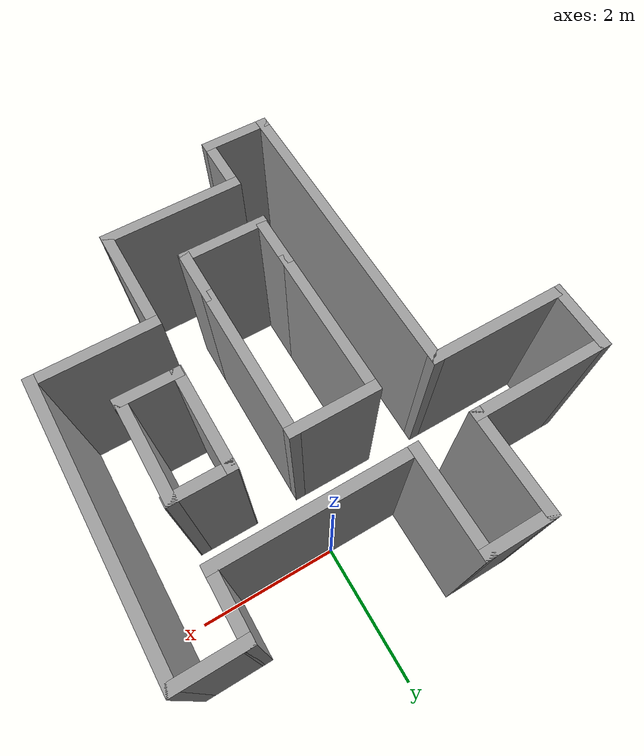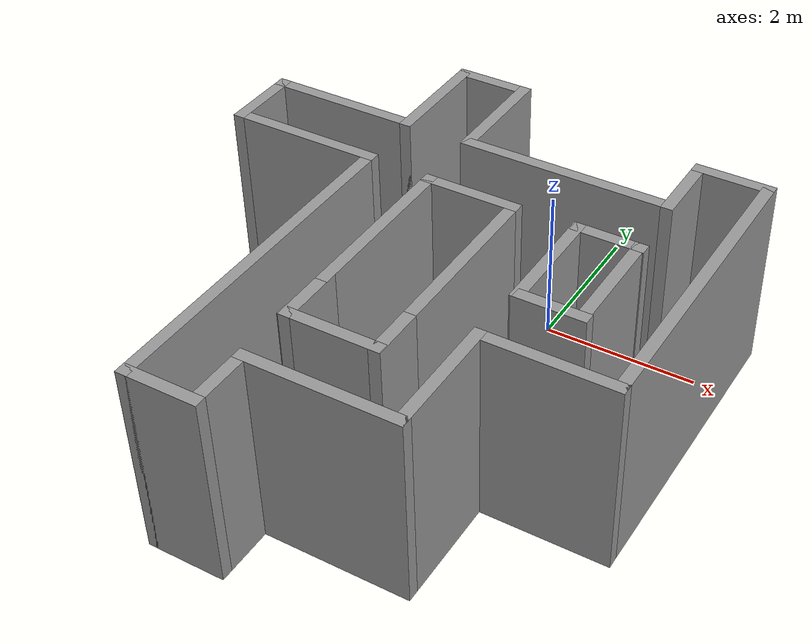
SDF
<?xml version='1.0'?>
<sdf version='1.7'>
  <model name='carehome02'>
    <pose>-0.744663 -1.99495 0 0 -0 0</pose>
    <link name='Wall_10'>
      <collision name='Wall_10_Collision'>
        <geometry>
          <box>
            <size>2 0.15 2.5</size>
          </box>
        </geometry>
        <pose>0 0 1.25 0 -0 0</pose>
      </collision>
      <visual name='Wall_10_Visual'>
        <pose>0 0 1.25 0 -0 0</pose>
        <geometry>
          <box>
            <size>2 0.15 2.5</size>
          </box>
        </geometry>
        <material>
          <script>
            <uri>file://media/materials/scripts/gazebo.material</uri>
            <name>Gazebo/Grey</name>
          </script>
          <ambient>1 1 1 1</ambient>
        </material>
        <meta>
          <layer>0</layer>
        </meta>
      </visual>
      <pose>-2.15 1.075 0 0 -0 3.14159</pose>
    </link>
    <link name='Wall_11'>
      <collision name='Wall_11_Collision'>
        <geometry>
          <box>
            <size>1 0.15 2.5</size>
          </box>
        </geometry>
        <pose>0 0 1.25 0 -0 0</pose>
      </collision>
      <visual name='Wall_11_Visual'>
        <pose>0 0 1.25 0 -0 0</pose>
        <geometry>
          <box>
            <size>1 0.15 2.5</size>
          </box>
        </geometry>
        <material>
          <script>
            <uri>file://media/materials/scripts/gazebo.material</uri>
            <name>Gazebo/Grey</name>
          </script>
          <ambient>1 1 1 1</ambient>
        </material>
        <meta>
          <layer>0</layer>
        </meta>
      </visual>
      <pose>-3.075 1.5 0 0 -0 1.5708</pose>
    </link>
    <link name='Wall_12'>
      <collision name='Wall_12_Collision'>
        <geometry>
          <box>
            <size>2 0.15 2.5</size>
          </box>
        </geometry>
        <pose>0 0 1.25 0 -0 0</pose>
      </collision>
      <visual name='Wall_12_Visual'>
        <pose>0 0 1.25 0 -0 0</pose>
        <geometry>
          <box>
            <size>2 0.15 2.5</size>
          </box>
        </geometry>
        <material>
          <script>
            <uri>file://media/materials/scripts/gazebo.material</uri>
            <name>Gazebo/Grey</name>
          </script>
          <ambient>1 1 1 1</ambient>
        </material>
        <meta>
          <layer>0</layer>
        </meta>
      </visual>
      <pose>-2.15 1.925 0 0 -0 0</pose>
    </link>
    <link name='Wall_15'>
      <collision name='Wall_15_Collision'>
        <geometry>
          <box>
            <size>1.5 0.15 2.5</size>
          </box>
        </geometry>
        <pose>0 0 1.25 0 -0 0</pose>
      </collision>
      <visual name='Wall_15_Visual'>
        <pose>0 0 1.25 0 -0 0</pose>
        <geometry>
          <box>
            <size>1.5 0.15 2.5</size>
          </box>
        </geometry>
        <material>
          <script>
            <uri>file://media/materials/scripts/gazebo.material</uri>
            <name>Gazebo/Grey</name>
          </script>
          <ambient>1 1 1 1</ambient>
        </material>
        <meta>
          <layer>0</layer>
        </meta>
      </visual>
      <pose>-1.225 2.6 0 0 -0 1.5708</pose>
    </link>
    <link name='Wall_16'>
      <collision name='Wall_16_Collision'>
        <geometry>
          <box>
            <size>1 0.15 2.5</size>
          </box>
        </geometry>
        <pose>0 0 1.25 0 -0 0</pose>
      </collision>
      <visual name='Wall_16_Visual'>
        <pose>0 0 1.25 0 -0 0</pose>
        <geometry>
          <box>
            <size>1 0.15 2.5</size>
          </box>
        </geometry>
        <material>
          <script>
            <uri>file://media/materials/scripts/gazebo.material</uri>
            <name>Gazebo/Grey</name>
          </script>
          <ambient>1 1 1 1</ambient>
        </material>
        <meta>
          <layer>0</layer>
        </meta>
      </visual>
      <pose>-0.8 3.275 0 0 -0 0</pose>
    </link>
    <link name='Wall_17'>
      <collision name='Wall_17_Collision'>
        <geometry>
          <box>
            <size>1.5 0.15 2.5</size>
          </box>
        </geometry>
        <pose>0 0 1.25 0 -0 0</pose>
      </collision>
      <visual name='Wall_17_Visual'>
        <pose>0 0 1.25 0 -0 0</pose>
        <geometry>
          <box>
            <size>1.5 0.15 2.5</size>
          </box>
        </geometry>
        <material>
          <script>
            <uri>file://media/materials/scripts/gazebo.material</uri>
            <name>Gazebo/Grey</name>
          </script>
          <ambient>1 1 1 1</ambient>
        </material>
        <meta>
          <layer>0</layer>
        </meta>
      </visual>
      <pose>-0.375 2.6 0 0 -0 -1.5708</pose>
    </link>
    <link name='Wall_18'>
      <collision name='Wall_18_Collision'>
        <geometry>
          <box>
            <size>2.75 0.15 2.5</size>
          </box>
        </geometry>
        <pose>0 0 1.25 0 -0 0</pose>
      </collision>
      <visual name='Wall_18_Visual'>
        <pose>0 0 1.25 0 -0 0</pose>
        <geometry>
          <box>
            <size>2.75 0.15 2.5</size>
          </box>
        </geometry>
        <material>
          <script>
            <uri>file://media/materials/scripts/gazebo.material</uri>
            <name>Gazebo/Grey</name>
          </script>
          <ambient>1 1 1 1</ambient>
        </material>
        <meta>
          <layer>0</layer>
        </meta>
      </visual>
      <pose>0.925 1.925 0 0 -0 0</pose>
    </link>
    <link name='Wall_19'>
      <collision name='Wall_19_Collision'>
        <geometry>
          <box>
            <size>1 0.15 2.5</size>
          </box>
        </geometry>
        <pose>0 0 1.25 0 -0 0</pose>
      </collision>
      <visual name='Wall_19_Visual'>
        <pose>0 0 1.25 0 -0 0</pose>
        <geometry>
          <box>
            <size>1 0.15 2.5</size>
          </box>
        </geometry>
        <material>
          <script>
            <uri>file://media/materials/scripts/gazebo.material</uri>
            <name>Gazebo/Grey</name>
          </script>
          <ambient>1 1 1 1</ambient>
        </material>
        <meta>
          <layer>0</layer>
        </meta>
      </visual>
      <pose>2.225 2.35 0 0 -0 1.5708</pose>
    </link>
    <link name='Wall_20'>
      <collision name='Wall_20_Collision'>
        <geometry>
          <box>
            <size>1 0.15 2.5</size>
          </box>
        </geometry>
        <pose>0 0 1.25 0 -0 0</pose>
      </collision>
      <visual name='Wall_20_Visual'>
        <pose>0 0 1.25 0 -0 0</pose>
        <geometry>
          <box>
            <size>1 0.15 2.5</size>
          </box>
        </geometry>
        <material>
          <script>
            <uri>file://media/materials/scripts/gazebo.material</uri>
            <name>Gazebo/Grey</name>
          </script>
          <ambient>1 1 1 1</ambient>
        </material>
        <meta>
          <layer>0</layer>
        </meta>
      </visual>
      <pose>2.65 2.775 0 0 -0 0</pose>
    </link>
    <link name='Wall_21'>
      <collision name='Wall_21_Collision'>
        <geometry>
          <box>
            <size>4 0.15 2.5</size>
          </box>
        </geometry>
        <pose>0 0 1.25 0 -0 0</pose>
      </collision>
      <visual name='Wall_21_Visual'>
        <pose>0 0 1.25 0 -0 0</pose>
        <geometry>
          <box>
            <size>4 0.15 2.5</size>
          </box>
        </geometry>
        <material>
          <script>
            <uri>file://media/materials/scripts/gazebo.material</uri>
            <name>Gazebo/Grey</name>
          </script>
          <ambient>1 1 1 1</ambient>
        </material>
        <meta>
          <layer>0</layer>
        </meta>
      </visual>
      <pose>3.075 0.85 0 0 -0 -1.5708</pose>
    </link>
    <link name='Wall_23'>
      <collision name='Wall_23_Collision'>
        <geometry>
          <box>
            <size>2.25 0.15 2.5</size>
          </box>
        </geometry>
        <pose>0 0 1.25 0 -0 0</pose>
      </collision>
      <visual name='Wall_23_Visual'>
        <pose>0 0 1.25 0 -0 0</pose>
        <geometry>
          <box>
            <size>2.25 0.15 2.5</size>
          </box>
        </geometry>
        <material>
          <script>
            <uri>file://media/materials/scripts/gazebo.material</uri>
            <name>Gazebo/Grey</name>
          </script>
          <ambient>1 1 1 1</ambient>
        </material>
        <meta>
          <layer>0</layer>
        </meta>
      </visual>
      <pose>0.725 -0.025 0 0 -0 1.5708</pose>
    </link>
    <link name='Wall_24'>
      <collision name='Wall_24_Collision'>
        <geometry>
          <box>
            <size>1.25 0.15 2.5</size>
          </box>
        </geometry>
        <pose>0 0 1.25 0 -0 0</pose>
      </collision>
      <visual name='Wall_24_Visual'>
        <pose>0 0 1.25 0 -0 0</pose>
        <geometry>
          <box>
            <size>1.25 0.15 2.5</size>
          </box>
        </geometry>
        <material>
          <script>
            <uri>file://media/materials/scripts/gazebo.material</uri>
            <name>Gazebo/Grey</name>
          </script>
          <ambient>1 1 1 1</ambient>
        </material>
        <meta>
          <layer>0</layer>
        </meta>
      </visual>
      <pose>0.175 1.025 0 0 -0 3.14159</pose>
    </link>
    <link name='Wall_25'>
      <collision name='Wall_25_Collision'>
        <geometry>
          <box>
            <size>2.25 0.15 2.5</size>
          </box>
        </geometry>
        <pose>0 0 1.25 0 -0 0</pose>
      </collision>
      <visual name='Wall_25_Visual'>
        <pose>0 0 1.25 0 -0 0</pose>
        <geometry>
          <box>
            <size>2.25 0.15 2.5</size>
          </box>
        </geometry>
        <material>
          <script>
            <uri>file://media/materials/scripts/gazebo.material</uri>
            <name>Gazebo/Grey</name>
          </script>
          <ambient>1 1 1 1</ambient>
        </material>
        <meta>
          <layer>0</layer>
        </meta>
      </visual>
      <pose>-0.375 -0.025 0 0 -0 -1.5708</pose>
    </link>
    <link name='Wall_36'>
      <collision name='Wall_36_Collision'>
        <geometry>
          <box>
            <size>1.5 0.15 2.5</size>
          </box>
        </geometry>
        <pose>0 0 1.25 0 -0 0</pose>
      </collision>
      <visual name='Wall_36_Visual'>
        <pose>0 0 1.25 0 -0 0</pose>
        <geometry>
          <box>
            <size>1.5 0.15 2.5</size>
          </box>
        </geometry>
        <material>
          <script>
            <uri>file://media/materials/scripts/gazebo.material</uri>
            <name>Gazebo/Grey</name>
          </script>
          <ambient>1 1 1 1</ambient>
        </material>
        <meta>
          <layer>0</layer>
        </meta>
      </visual>
      <pose>1.52194 0.37065 0 0 -0 -1.5708</pose>
    </link>
    <link name='Wall_37'>
      <collision name='Wall_37_Collision'>
        <geometry>
          <box>
            <size>0.8942 0.15 2.5</size>
          </box>
        </geometry>
        <pose>0 0 1.25 0 -0 0</pose>
      </collision>
      <visual name='Wall_37_Visual'>
        <pose>0 0 1.25 0 -0 0</pose>
        <geometry>
          <box>
            <size>0.8942 0.15 2.5</size>
          </box>
        </geometry>
        <material>
          <script>
            <uri>file://media/materials/scripts/gazebo.material</uri>
            <name>Gazebo/Grey</name>
          </script>
          <ambient>1 1 1 1</ambient>
        </material>
        <meta>
          <layer>0</layer>
        </meta>
      </visual>
      <pose>1.90726 -0.30435 0 0 -0 0</pose>
    </link>
    <link name='Wall_38'>
      <collision name='Wall_38_Collision'>
        <geometry>
          <box>
            <size>1.5 0.15 2.5</size>
          </box>
        </geometry>
        <pose>0 0 1.25 0 -0 0</pose>
      </collision>
      <visual name='Wall_38_Visual'>
        <pose>0 0 1.25 0 -0 0</pose>
        <geometry>
          <box>
            <size>1.5 0.15 2.5</size>
          </box>
        </geometry>
        <material>
          <script>
            <uri>file://media/materials/scripts/gazebo.material</uri>
            <name>Gazebo/Grey</name>
          </script>
          <ambient>1 1 1 1</ambient>
        </material>
        <meta>
          <layer>0</layer>
        </meta>
      </visual>
      <pose>2.26614 0.37065 0 0 -0 1.5708</pose>
    </link>
    <link name='Wall_39'>
      <collision name='Wall_39_Collision'>
        <geometry>
          <box>
            <size>0.8942 0.15 2.5</size>
          </box>
        </geometry>
        <pose>0 0 1.25 0 -0 0</pose>
      </collision>
      <visual name='Wall_39_Visual'>
        <pose>0 0 1.25 0 -0 0</pose>
        <geometry>
          <box>
            <size>0.8942 0.15 2.5</size>
          </box>
        </geometry>
        <material>
          <script>
            <uri>file://media/materials/scripts/gazebo.material</uri>
            <name>Gazebo/Grey</name>
          </script>
          <ambient>1 1 1 1</ambient>
        </material>
        <meta>
          <layer>0</layer>
        </meta>
      </visual>
      <pose>1.90726 1.04565 0 0 -0 3.14159</pose>
    </link>
    <link name='Wall_41'>
      <collision name='Wall_41_Collision'>
        <geometry>
          <box>
            <size>0.830641 0.15 2.5</size>
          </box>
        </geometry>
        <pose>0 0 1.25 0 -0 0</pose>
      </collision>
      <visual name='Wall_41_Visual'>
        <pose>0 0 1.25 0 -0 0</pose>
        <geometry>
          <box>
            <size>0.830641 0.15 2.5</size>
          </box>
        </geometry>
        <material>
          <script>
            <uri>file://media/materials/scripts/gazebo.material</uri>
            <name>Gazebo/Grey</name>
          </script>
          <ambient>1 1 1 1</ambient>
        </material>
        <meta>
          <layer>0</layer>
        </meta>
      </visual>
      <pose>-0.375 -1.41528 0 0 -0 -1.5708</pose>
    </link>
    <link name='Wall_44'>
      <collision name='Wall_44_Collision'>
        <geometry>
          <box>
            <size>2 0.15 2.5</size>
          </box>
        </geometry>
        <pose>0 0 1.25 0 -0 0</pose>
      </collision>
      <visual name='Wall_44_Visual'>
        <pose>0 0 1.25 0 -0 0</pose>
        <geometry>
          <box>
            <size>2 0.15 2.5</size>
          </box>
        </geometry>
        <material>
          <script>
            <uri>file://media/materials/scripts/gazebo.material</uri>
            <name>Gazebo/Grey</name>
          </script>
          <ambient>1 1 1 1</ambient>
        </material>
        <meta>
          <layer>0</layer>
        </meta>
      </visual>
      <pose>0.55 -2.525 0 0 -0 3.14159</pose>
    </link>
    <link name='Wall_45'>
      <collision name='Wall_45_Collision'>
        <geometry>
          <box>
            <size>0.75 0.15 2.5</size>
          </box>
        </geometry>
        <pose>0 0 1.25 0 -0 0</pose>
      </collision>
      <visual name='Wall_45_Visual'>
        <pose>0 0 1.25 0 -0 0</pose>
        <geometry>
          <box>
            <size>0.75 0.15 2.5</size>
          </box>
        </geometry>
        <material>
          <script>
            <uri>file://media/materials/scripts/gazebo.material</uri>
            <name>Gazebo/Grey</name>
          </script>
          <ambient>1 1 1 1</ambient>
        </material>
        <meta>
          <layer>0</layer>
        </meta>
      </visual>
      <pose>-0.375 -2.825 0 0 -0 -1.5708</pose>
    </link>
    <link name='Wall_47'>
      <collision name='Wall_47_Collision'>
        <geometry>
          <box>
            <size>1 0.15 2.5</size>
          </box>
        </geometry>
        <pose>0 0 1.25 0 -0 0</pose>
      </collision>
      <visual name='Wall_47_Visual'>
        <pose>0 0 1.25 0 -0 0</pose>
        <geometry>
          <box>
            <size>1 0.15 2.5</size>
          </box>
        </geometry>
        <material>
          <script>
            <uri>file://media/materials/scripts/gazebo.material</uri>
            <name>Gazebo/Grey</name>
          </script>
          <ambient>1 1 1 1</ambient>
        </material>
        <meta>
          <layer>0</layer>
        </meta>
      </visual>
      <pose>-0.8 -3.275 0 0 -0 0</pose>
    </link>
    <link name='Wall_52'>
      <collision name='Wall_52_Collision'>
        <geometry>
          <box>
            <size>1.25 0.15 2.5</size>
          </box>
        </geometry>
        <pose>0 0 1.25 0 -0 0</pose>
      </collision>
      <visual name='Wall_52_Visual'>
        <pose>0 0 1.25 0 -0 0</pose>
        <geometry>
          <box>
            <size>1.25 0.15 2.5</size>
          </box>
        </geometry>
        <material>
          <script>
            <uri>file://media/materials/scripts/gazebo.material</uri>
            <name>Gazebo/Grey</name>
          </script>
          <ambient>1 1 1 1</ambient>
        </material>
        <meta>
          <layer>0</layer>
        </meta>
      </visual>
      <pose>0.165 -1.75557 0 0 -0 0</pose>
    </link>
    <link name='Wall_53'>
      <collision name='Wall_53_Collision'>
        <geometry>
          <box>
            <size>0.830641 0.15 2.5</size>
          </box>
        </geometry>
        <pose>0 0 1.25 0 -0 0</pose>
      </collision>
      <visual name='Wall_53_Visual'>
        <pose>0 0 1.25 0 -0 0</pose>
        <geometry>
          <box>
            <size>0.830641 0.15 2.5</size>
          </box>
        </geometry>
        <material>
          <script>
            <uri>file://media/materials/scripts/gazebo.material</uri>
            <name>Gazebo/Grey</name>
          </script>
          <ambient>1 1 1 1</ambient>
        </material>
        <meta>
          <layer>0</layer>
        </meta>
      </visual>
      <pose>0.725 -1.41528 0 0 -0 1.5708</pose>
    </link>
    <link name='Wall_55'>
      <collision name='Wall_55_Collision'>
        <geometry>
          <box>
            <size>1.75 0.15 2.5</size>
          </box>
        </geometry>
        <pose>0 0 1.25 0 -0 0</pose>
      </collision>
      <visual name='Wall_55_Visual'>
        <pose>0 0 1.25 0 -0 0</pose>
        <geometry>
          <box>
            <size>1.75 0.15 2.5</size>
          </box>
        </geometry>
        <material>
          <script>
            <uri>file://media/materials/scripts/gazebo.material</uri>
            <name>Gazebo/Grey</name>
          </script>
          <ambient>1 1 1 1</ambient>
        </material>
        <meta>
          <layer>0</layer>
        </meta>
      </visual>
      <pose>2.275 -1.075 0 0 -0 3.14159</pose>
    </link>
    <link name='Wall_56'>
      <collision name='Wall_56_Collision'>
        <geometry>
          <box>
            <size>1.6 0.15 2.5</size>
          </box>
        </geometry>
        <pose>0 0 1.25 0 -0 0</pose>
      </collision>
      <visual name='Wall_56_Visual'>
        <pose>0 0 1.25 0 -0 0</pose>
        <geometry>
          <box>
            <size>1.6 0.15 2.5</size>
          </box>
        </geometry>
        <material>
          <script>
            <uri>file://media/materials/scripts/gazebo.material</uri>
            <name>Gazebo/Grey</name>
          </script>
          <ambient>1 1 1 1</ambient>
        </material>
        <meta>
          <layer>0</layer>
        </meta>
      </visual>
      <pose>1.475 -1.8 0 0 -0 -1.5708</pose>
    </link>
    <link name='Wall_8'>
      <collision name='Wall_8_Collision'>
        <geometry>
          <box>
            <size>4.5 0.15 2.5</size>
          </box>
        </geometry>
        <pose>0 0 1.25 0 -0 0</pose>
      </collision>
      <visual name='Wall_8_Visual'>
        <pose>0 0 1.25 0 -0 0</pose>
        <geometry>
          <box>
            <size>4.5 0.15 2.5</size>
          </box>
        </geometry>
        <material>
          <script>
            <uri>file://media/materials/scripts/gazebo.material</uri>
            <name>Gazebo/Grey</name>
          </script>
          <ambient>1 1 1 1</ambient>
        </material>
        <meta>
          <layer>0</layer>
        </meta>
      </visual>
      <pose>-1.225 -1.1 0 0 -0 1.5708</pose>
    </link>
    <static>1</static>
  </model>
</sdf>
